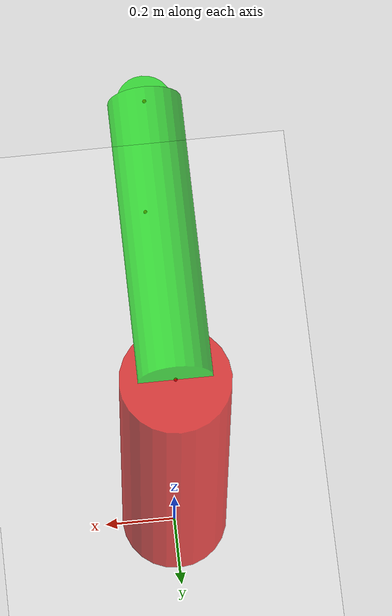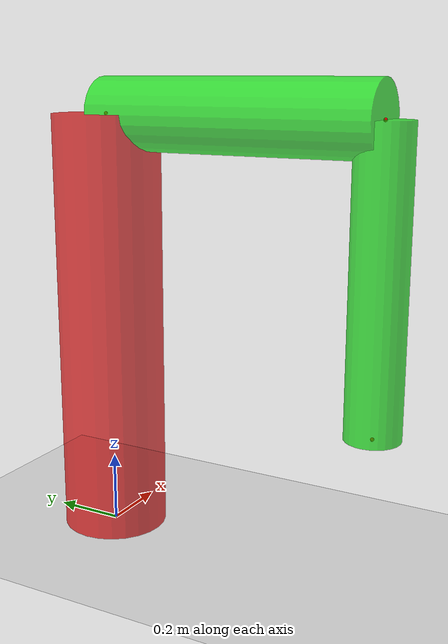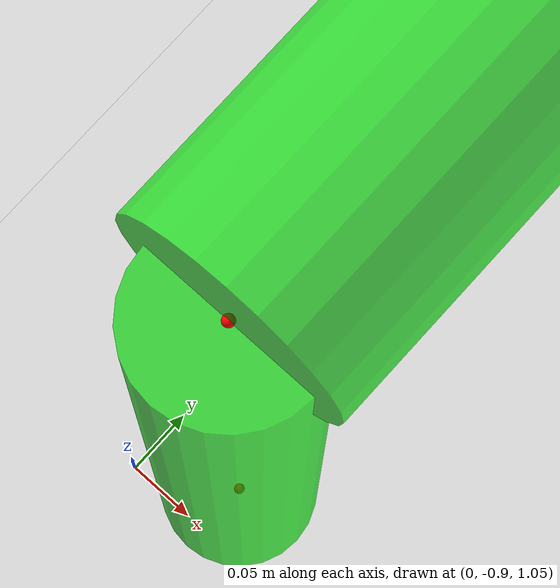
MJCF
<mujoco>
<option gravity="0 0 -9.804" integrator = "RK4" />
	<worldbody>
		<light diffuse=".5 .5 .5" pos="0 0 3" dir="0 0 -1"/>
		<geom type="plane" size="2.5 2.5 0.1" rgba=".9 .9 .9 1" pos="0 0 0"/>
		<geom type="cylinder" size=".15 0.6" pos="0 0 .6" xyaxes="1 0 0 0 1 0" rgba="0.9 0 0 0.7"/>
		<body name="frame1" pos="0 0 1.2" xyaxes="1 0 0 0 0 1">
			<joint name="joint1" type="hinge" axis="0 1 0" pos="0 0 0"/>
			<inertial diaginertia=".000001 .000000001 .000001" pos="0 0 0" mass=".0000000001"/>
			<site name="frame1site" pos="0 0 0" size=".005" rgba="1 0 0 1" type="sphere"/>
			<body name="frame2" pos="0 0 .8" xyaxes="1 0 0 0 0 1">
				<joint name="joint2" type="hinge" axis="0 1 0" pos="0 0  0 "/>
				<geom type="cylinder" size=".1 0.4" pos="0 -.4 0" xyaxes="1 0 0 0 0 1" rgba="0 .9 0 0.7"/>
				<geom type="cylinder" size=".075 0.4" pos="0 0 .4" xyaxes="1 0 0 0 1 0" rgba="0 .9 0 0.7"/>
				<site name="frame2-sensor" pos="0 0 0" size=".005" rgba="1 0 0 1" type="sphere"/>
				<body name="end-effector" pos="0 0 .8" xyaxes="0 -1 0 1 0 0">
					<site name="end-effector-sensor" pos="0 0 0" size=".005" rgba="1 0 0 1" type="sphere"/>
				</body>
			</body>
		</body>
	</worldbody>
	<actuator>
		<motor name="joint1-actuator" joint="joint1"/>
	</actuator>

	<sensor>
		<velocimeter name="body-linear-vel-c" site="end-effector-sensor"/>
		<gyro name="body-ang-vel-c" site="end-effector-sensor"/><!--- body angular velcoity of the end effector wrt the world frame, this will need to be converted into a spatial velocity for use on Q4-->
		<gyro name="body-ang-vel-1" site="frame1site"/>

		<!-- Body velocities: expressed in the frame 2 (body) frame -->
		<velocimeter name="body-linear-vel-2" site="frame2-sensor"/>
		<gyro name="body-ang-vel-2" site="frame2-sensor"/>

		<!-- Joint sensors for additional verification -->
		<jointpos name="joint1-position" joint="joint1"/>
		<jointpos name="joint2-position" joint="joint2"/>

		<jointvel name="joint1-velocity" joint="joint1"/>
		<jointvel name="joint2-velocity" joint="joint2"/>

	</sensor>

	<keyframe>
	<key name="home" qpos="1.570796327 0"/><!-- theta1, theta2-->
	<key name="Q1" qpos="2.617993878 -1.346396852"/><!-- theta1, theta2-->
	</keyframe>
</mujoco>
